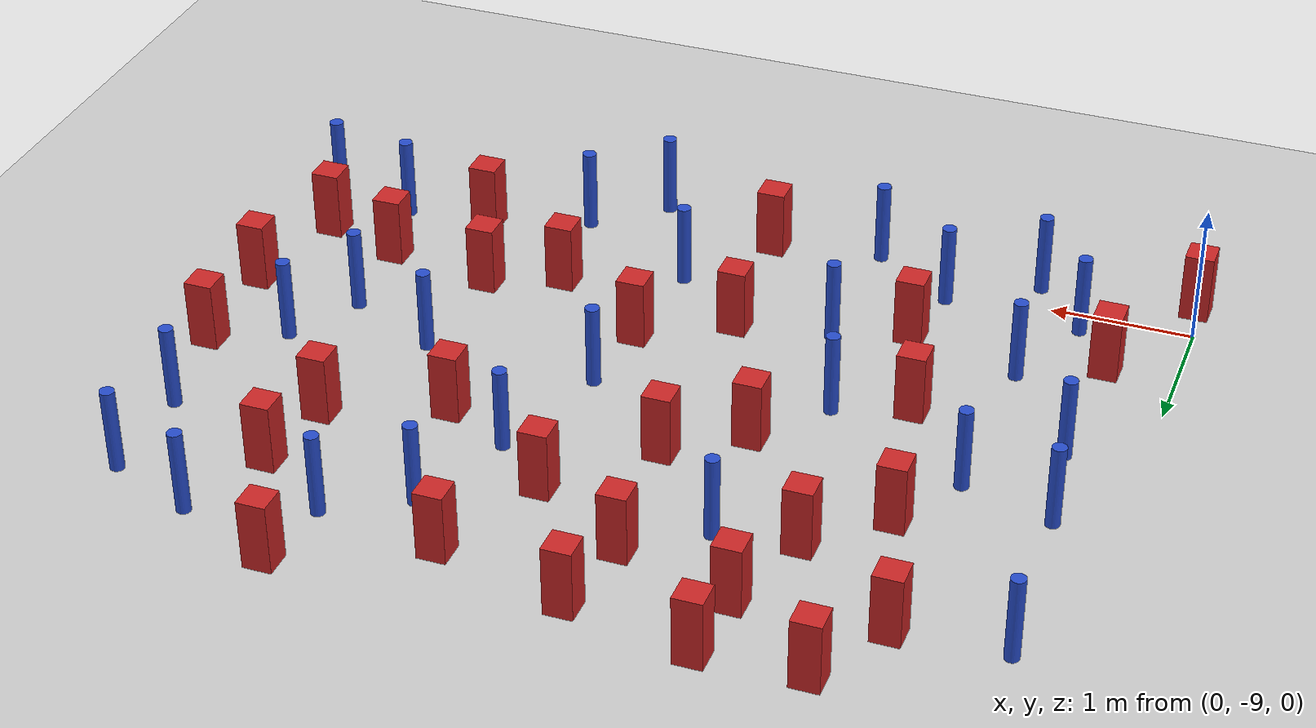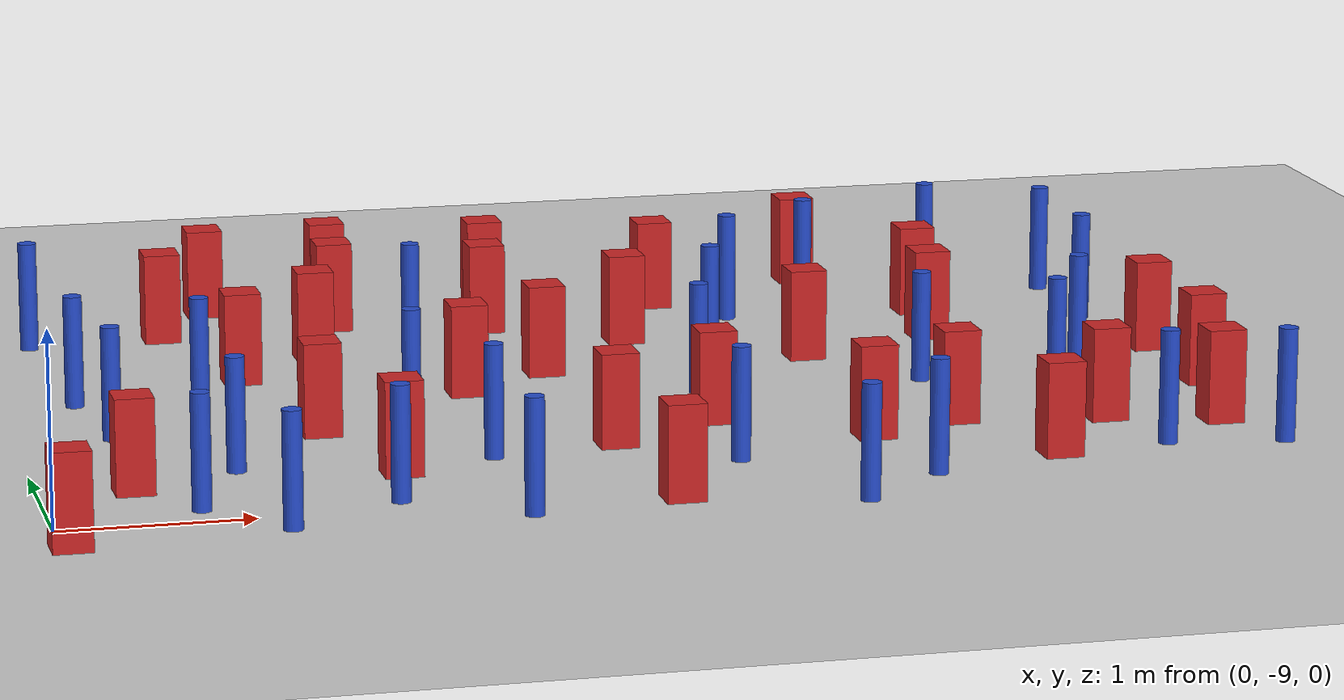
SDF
<sdf version="1.6">
 <world name="default">
  <model name="ground_plane">
   <static>1</static>
   <link name="link">
    <collision name="collision">
     <geometry><plane><normal>0 0 1</normal><size>100 100</size></plane></geometry>
     <surface><friction><ode><mu>100</mu><mu2>50</mu2></ode></friction></surface>
    </collision>
    <visual name="visual">
     <cast_shadows>0</cast_shadows>
     <geometry><plane><normal>0 0 1</normal><size>100 100</size></plane></geometry>
     <material>
      <ambient>1.0 1.0 1.0 1.0</ambient>
      <diffuse>0.8 0.8 0.8 1.0</diffuse>
      <specular>0.01 0.01 0.01 1.000000</specular>
     </material>
    </visual>
   </link>
  </model>
  <model name="square_post_obstacle11">
   <static>true</static>
   <pose>5.33757525692 -5.51145749906 8.22691968438e-08 7.22125133819e-06 -7.54495500217e-07 2.29674213826e-05</pose>
   <link name="link">
    <pose>0 0 0.25 0 -0 0</pose>
    <inertial>
     <mass>100</mass>
     <inertia>
      <ixx>0.166667</ixx>
      <ixy>0</ixy>
      <ixz>0</ixz>
      <iyy>0.166667</iyy>
      <iyz>0</iyz>
      <izz>0.166667</izz>
     </inertia>
    </inertial>
    <collision name="collision"><geometry><box><size>.2 .2 .5</size></box></geometry></collision>
    <visual name="visual">
     <geometry><box><size>.2 .2 .5</size></box></geometry>
     <material>
      <script><name>Gazebo/Red</name><uri>file://media/materials/scripts/gazebo.material</uri></script>
     </material>
    </visual>
   </link>
  </model>
  <model name="square_post_obstacle16">
   <static>true</static>
   <pose>1.57222593976 -7.46905780437 8.22691968438e-08 7.2212513382e-06 -7.54495500217e-07 2.29674213826e-05</pose>
   <link name="link">
    <pose>0 0 0.25 0 -0 0</pose>
    <inertial>
     <mass>100</mass>
     <inertia>
      <ixx>0.166667</ixx>
      <ixy>0</ixy>
      <ixz>0</ixz>
      <iyy>0.166667</iyy>
      <iyz>0</iyz>
      <izz>0.166667</izz>
     </inertia>
    </inertial>
    <collision name="collision"><geometry><box><size>.2 .2 .5</size></box></geometry></collision>
    <visual name="visual">
     <geometry><box><size>.2 .2 .5</size></box></geometry>
     <material>
      <script><name>Gazebo/Red</name><uri>file://media/materials/scripts/gazebo.material</uri></script>
     </material>
    </visual>
   </link>
  </model>
  <model name="square_post_obstacle21">
   <static>true</static>
   <pose>3.09033594513 -9.11885219332 8.22691968438e-08 7.22125133819e-06 -7.54495500217e-07 2.29674213826e-05</pose>
   <link name="link">
    <pose>0 0 0.25 0 -0 0</pose>
    <inertial>
     <mass>100</mass>
     <inertia>
      <ixx>0.166667</ixx>
      <ixy>0</ixy>
      <ixz>0</ixz>
      <iyy>0.166667</iyy>
      <iyz>0</iyz>
      <izz>0.166667</izz>
     </inertia>
    </inertial>
    <collision name="collision"><geometry><box><size>.2 .2 .5</size></box></geometry></collision>
    <visual name="visual">
     <geometry><box><size>.2 .2 .5</size></box></geometry>
     <material>
      <script><name>Gazebo/Red</name><uri>file://media/materials/scripts/gazebo.material</uri></script>
     </material>
    </visual>
   </link>
  </model>
  <model name="square_post_obstacle23">
   <static>true</static>
   <pose>3.91660827994 -5.03072451695 8.22691968438e-08 7.2212513382e-06 -7.54495500217e-07 2.29674213826e-05</pose>
   <link name="link">
    <pose>0 0 0.25 0 -0 0</pose>
    <inertial>
     <mass>100</mass>
     <inertia>
      <ixx>0.166667</ixx>
      <ixy>0</ixy>
      <ixz>0</ixz>
      <iyy>0.166667</iyy>
      <iyz>0</iyz>
      <izz>0.166667</izz>
     </inertia>
    </inertial>
    <collision name="collision"><geometry><box><size>.2 .2 .5</size></box></geometry></collision>
    <visual name="visual">
     <geometry><box><size>.2 .2 .5</size></box></geometry>
     <material>
      <script><name>Gazebo/Red</name><uri>file://media/materials/scripts/gazebo.material</uri></script>
     </material>
    </visual>
   </link>
  </model>
  <model name="pole_obstacle20">
   <static>true</static>
   <pose>1.04942983472 -6.79560014912 2.88873142074e-08 -9.90536689905e-09 4.60219948988e-07 -1.20965994961e-07</pose>
   <link name="link">
    <pose>0 0 0.3 0 -0 0</pose>
    <inertial>
     <mass>1</mass>
     <inertia><ixx>0.145833</ixx><ixy>0</ixy><ixz>0</ixz><iyy>0.145833</iyy><iyz>0</iyz><izz>0.125</izz></inertia>
    </inertial>
    <collision name="collision">
     <geometry><cylinder><radius>0.05</radius><length>.6</length></cylinder></geometry>
    </collision>
    <visual name="visual">
     <geometry><cylinder><radius>0.05</radius><length>.6</length></cylinder></geometry>
     <material>
      <script><name>Gazebo/Blue</name><uri>file://media/materials/scripts/gazebo.material</uri></script>
     </material>
    </visual>
   </link>
  </model>
  <model name="pole_obstacle31">
   <static>true</static>
   <pose>3.97341685442 -6.19304630537 2.88873142074e-08 -9.90536690327e-09 4.60219948978e-07 -1.20965994969e-07</pose>
   <link name="link">
    <pose>0 0 0.3 0 -0 0</pose>
    <inertial>
     <mass>1</mass>
     <inertia><ixx>0.145833</ixx><ixy>0</ixy><ixz>0</ixz><iyy>0.145833</iyy><iyz>0</iyz><izz>0.125</izz></inertia>
    </inertial>
    <collision name="collision">
     <geometry><cylinder><radius>0.05</radius><length>.6</length></cylinder></geometry>
    </collision>
    <visual name="visual">
     <geometry><cylinder><radius>0.05</radius><length>.6</length></cylinder></geometry>
     <material>
      <script><name>Gazebo/Blue</name><uri>file://media/materials/scripts/gazebo.material</uri></script>
     </material>
    </visual>
   </link>
  </model>
  <model name="pole_obstacle32">
   <static>true</static>
   <pose>6.21804202806 -5.89140701214 2.88873142074e-08 -9.90536690842e-09 4.60219948965e-07 -1.20965994976e-07</pose>
   <link name="link">
    <pose>0 0 0.3 0 -0 0</pose>
    <inertial>
     <mass>1</mass>
     <inertia><ixx>0.145833</ixx><ixy>0</ixy><ixz>0</ixz><iyy>0.145833</iyy><iyz>0</iyz><izz>0.125</izz></inertia>
    </inertial>
    <collision name="collision">
     <geometry><cylinder><radius>0.05</radius><length>.6</length></cylinder></geometry>
    </collision>
    <visual name="visual">
     <geometry><cylinder><radius>0.05</radius><length>.6</length></cylinder></geometry>
     <material>
      <script><name>Gazebo/Blue</name><uri>file://media/materials/scripts/gazebo.material</uri></script>
     </material>
    </visual>
   </link>
  </model>
  <model name="pole_obstacle42">
   <static>true</static>
   <pose>5.58293722837 -7.39669239524 2.88873142074e-08 -9.90536690842e-09 4.60219948965e-07 -1.20965994976e-07</pose>
   <link name="link">
    <pose>0 0 0.3 0 -0 0</pose>
    <inertial>
     <mass>1</mass>
     <inertia><ixx>0.145833</ixx><ixy>0</ixy><ixz>0</ixz><iyy>0.145833</iyy><iyz>0</iyz><izz>0.125</izz></inertia>
    </inertial>
    <collision name="collision">
     <geometry><cylinder><radius>0.05</radius><length>.6</length></cylinder></geometry>
    </collision>
    <visual name="visual">
     <geometry><cylinder><radius>0.05</radius><length>.6</length></cylinder></geometry>
     <material>
      <script><name>Gazebo/Blue</name><uri>file://media/materials/scripts/gazebo.material</uri></script>
     </material>
    </visual>
   </link>
  </model>
  <model name="pole_obstacle44">
   <static>true</static>
   <pose>3.9818655795 -9.3656703837 2.88873142074e-08 -9.90536692324e-09 4.6021994893e-07 -1.20965994987e-07</pose>
   <link name="link">
    <pose>0 0 0.3 0 -0 0</pose>
    <inertial>
     <mass>1</mass>
     <inertia><ixx>0.145833</ixx><ixy>0</ixy><ixz>0</ixz><iyy>0.145833</iyy><iyz>0</iyz><izz>0.125</izz></inertia>
    </inertial>
    <collision name="collision">
     <geometry><cylinder><radius>0.05</radius><length>.6</length></cylinder></geometry>
    </collision>
    <visual name="visual">
     <geometry><cylinder><radius>0.05</radius><length>.6</length></cylinder></geometry>
     <material>
      <script><name>Gazebo/Blue</name><uri>file://media/materials/scripts/gazebo.material</uri></script>
     </material>
    </visual>
   </link>
  </model>
  <model name="square_post_obstacle44">
   <static>true</static>
   <pose>2.0408039706 -5.16753493595 8.22691968438e-08 7.22125133819e-06 -7.54495500217e-07 2.29674213826e-05</pose>
   <link name="link">
    <pose>0 0 0.25 0 -0 0</pose>
    <inertial>
     <mass>100</mass>
     <inertia>
      <ixx>0.166667</ixx>
      <ixy>0</ixy>
      <ixz>0</ixz>
      <iyy>0.166667</iyy>
      <iyz>0</iyz>
      <izz>0.166667</izz>
     </inertia>
    </inertial>
    <collision name="collision"><geometry><box><size>.2 .2 .5</size></box></geometry></collision>
    <visual name="visual">
     <geometry><box><size>.2 .2 .5</size></box></geometry>
     <material>
      <script><name>Gazebo/Red</name><uri>file://media/materials/scripts/gazebo.material</uri></script>
     </material>
    </visual>
   </link>
  </model>
  <model name="pole_obstacle51">
   <static>true</static>
   <pose>0.325371970899 -5.27426410133 2.88873142074e-08 -9.90536689683e-09 4.60219948993e-07 -1.20965994957e-07</pose>
   <link name="link">
    <pose>0 0 0.3 0 -0 0</pose>
    <inertial>
     <mass>1</mass>
     <inertia><ixx>0.145833</ixx><ixy>0</ixy><ixz>0</ixz><iyy>0.145833</iyy><iyz>0</iyz><izz>0.125</izz></inertia>
    </inertial>
    <collision name="collision">
     <geometry><cylinder><radius>0.05</radius><length>.6</length></cylinder></geometry>
    </collision>
    <visual name="visual">
     <geometry><cylinder><radius>0.05</radius><length>.6</length></cylinder></geometry>
     <material>
      <script><name>Gazebo/Blue</name><uri>file://media/materials/scripts/gazebo.material</uri></script>
     </material>
    </visual>
   </link>
  </model>
  <model name="square_post_obstacle55">
   <static>true</static>
   <pose>2.9736760606 -6.46596064073 8.22691968438e-08 7.2212513382e-06 -7.54495500217e-07 2.29674213826e-05</pose>
   <link name="link">
    <pose>0 0 0.25 0 -0 0</pose>
    <inertial>
     <mass>100</mass>
     <inertia>
      <ixx>0.166667</ixx>
      <ixy>0</ixy>
      <ixz>0</ixz>
      <iyy>0.166667</iyy>
      <iyz>0</iyz>
      <izz>0.166667</izz>
     </inertia>
    </inertial>
    <collision name="collision"><geometry><box><size>.2 .2 .5</size></box></geometry></collision>
    <visual name="visual">
     <geometry><box><size>.2 .2 .5</size></box></geometry>
     <material>
      <script><name>Gazebo/Red</name><uri>file://media/materials/scripts/gazebo.material</uri></script>
     </material>
    </visual>
   </link>
  </model>
  <model name="pole_obstacle54">
   <static>true</static>
   <pose>4.78935690146 -5.14286120551 2.88873142074e-08 -9.90536690842e-09 4.60219948965e-07 -1.20965994976e-07</pose>
   <link name="link">
    <pose>0 0 0.3 0 -0 0</pose>
    <inertial>
     <mass>1</mass>
     <inertia><ixx>0.145833</ixx><ixy>0</ixy><ixz>0</ixz><iyy>0.145833</iyy><iyz>0</iyz><izz>0.125</izz></inertia>
    </inertial>
    <collision name="collision">
     <geometry><cylinder><radius>0.05</radius><length>.6</length></cylinder></geometry>
    </collision>
    <visual name="visual">
     <geometry><cylinder><radius>0.05</radius><length>.6</length></cylinder></geometry>
     <material>
      <script><name>Gazebo/Blue</name><uri>file://media/materials/scripts/gazebo.material</uri></script>
     </material>
    </visual>
   </link>
  </model>
  <model name="square_post_obstacle58">
   <static>true</static>
   <pose>5.24408193149 -6.12014181599 8.22691968438e-08 7.2212513382e-06 -7.54495500217e-07 2.29674213826e-05</pose>
   <link name="link">
    <pose>0 0 0.25 0 -0 0</pose>
    <inertial>
     <mass>100</mass>
     <inertia>
      <ixx>0.166667</ixx>
      <ixy>0</ixy>
      <ixz>0</ixz>
      <iyy>0.166667</iyy>
      <iyz>0</iyz>
      <izz>0.166667</izz>
     </inertia>
    </inertial>
    <collision name="collision"><geometry><box><size>.2 .2 .5</size></box></geometry></collision>
    <visual name="visual">
     <geometry><box><size>.2 .2 .5</size></box></geometry>
     <material>
      <script><name>Gazebo/Red</name><uri>file://media/materials/scripts/gazebo.material</uri></script>
     </material>
    </visual>
   </link>
  </model>
  <model name="square_post_obstacle59">
   <static>true</static>
   <pose>1.064555535 -5.22423128339 8.22691968438e-08 7.22125133819e-06 -7.54495500217e-07 2.29674213826e-05</pose>
   <link name="link">
    <pose>0 0 0.25 0 -0 0</pose>
    <inertial>
     <mass>100</mass>
     <inertia>
      <ixx>0.166667</ixx>
      <ixy>0</ixy>
      <ixz>0</ixz>
      <iyy>0.166667</iyy>
      <iyz>0</iyz>
      <izz>0.166667</izz>
     </inertia>
    </inertial>
    <collision name="collision"><geometry><box><size>.2 .2 .5</size></box></geometry></collision>
    <visual name="visual">
     <geometry><box><size>.2 .2 .5</size></box></geometry>
     <material>
      <script><name>Gazebo/Red</name><uri>file://media/materials/scripts/gazebo.material</uri></script>
     </material>
    </visual>
   </link>
  </model>
  <model name="square_post_obstacle61">
   <static>true</static>
   <pose>2.97713820025 -4.79499850761 8.22691968438e-08 7.2212513382e-06 -7.54495500217e-07 2.29674213826e-05</pose>
   <link name="link">
    <pose>0 0 0.25 0 -0 0</pose>
    <inertial>
     <mass>100</mass>
     <inertia>
      <ixx>0.166667</ixx>
      <ixy>0</ixy>
      <ixz>0</ixz>
      <iyy>0.166667</iyy>
      <iyz>0</iyz>
      <izz>0.166667</izz>
     </inertia>
    </inertial>
    <collision name="collision"><geometry><box><size>.2 .2 .5</size></box></geometry></collision>
    <visual name="visual">
     <geometry><box><size>.2 .2 .5</size></box></geometry>
     <material>
      <script><name>Gazebo/Red</name><uri>file://media/materials/scripts/gazebo.material</uri></script>
     </material>
    </visual>
   </link>
  </model>
  <model name="pole_obstacle68">
   <static>true</static>
   <pose>4.45349878449 -8.96404991662 2.88873142074e-08 -9.9053668967e-09 4.60219948993e-07 -1.20965994957e-07</pose>
   <link name="link">
    <pose>0 0 0.3 0 -0 0</pose>
    <inertial>
     <mass>1</mass>
     <inertia><ixx>0.145833</ixx><ixy>0</ixy><ixz>0</ixz><iyy>0.145833</iyy><iyz>0</iyz><izz>0.125</izz></inertia>
    </inertial>
    <collision name="collision">
     <geometry><cylinder><radius>0.05</radius><length>.6</length></cylinder></geometry>
    </collision>
    <visual name="visual">
     <geometry><cylinder><radius>0.05</radius><length>.6</length></cylinder></geometry>
     <material>
      <script><name>Gazebo/Blue</name><uri>file://media/materials/scripts/gazebo.material</uri></script>
     </material>
    </visual>
   </link>
  </model>
  <model name="square_post_obstacle73">
   <static>true</static>
   <pose>4.85124030336 -7.96117170717 8.22691968438e-08 7.2212513382e-06 -7.54495500217e-07 2.29674213826e-05</pose>
   <link name="link">
    <pose>0 0 0.25 0 -0 0</pose>
    <inertial>
     <mass>100</mass>
     <inertia>
      <ixx>0.166667</ixx>
      <ixy>0</ixy>
      <ixz>0</ixz>
      <iyy>0.166667</iyy>
      <iyz>0</iyz>
      <izz>0.166667</izz>
     </inertia>
    </inertial>
    <collision name="collision"><geometry><box><size>.2 .2 .5</size></box></geometry></collision>
    <visual name="visual">
     <geometry><box><size>.2 .2 .5</size></box></geometry>
     <material>
      <script><name>Gazebo/Red</name><uri>file://media/materials/scripts/gazebo.material</uri></script>
     </material>
    </visual>
   </link>
  </model>
  <model name="pole_obstacle83">
   <static>true</static>
   <pose>1.13166540684 -9.23340567181 2.88873142074e-08 -9.90536690474e-09 4.60219948974e-07 -1.2096599497e-07</pose>
   <link name="link">
    <pose>0 0 0.3 0 -0 0</pose>
    <inertial>
     <mass>1</mass>
     <inertia><ixx>0.145833</ixx><ixy>0</ixy><ixz>0</ixz><iyy>0.145833</iyy><iyz>0</iyz><izz>0.125</izz></inertia>
    </inertial>
    <collision name="collision">
     <geometry><cylinder><radius>0.05</radius><length>.6</length></cylinder></geometry>
    </collision>
    <visual name="visual">
     <geometry><cylinder><radius>0.05</radius><length>.6</length></cylinder></geometry>
     <material>
      <script><name>Gazebo/Blue</name><uri>file://media/materials/scripts/gazebo.material</uri></script>
     </material>
    </visual>
   </link>
  </model>
  <model name="pole_obstacle84">
   <static>true</static>
   <pose>0.407851909466 -6.60980919452 2.88873142074e-08 -9.90536689683e-09 4.60219948993e-07 -1.20965994957e-07</pose>
   <link name="link">
    <pose>0 0 0.3 0 -0 0</pose>
    <inertial>
     <mass>1</mass>
     <inertia><ixx>0.145833</ixx><ixy>0</ixy><ixz>0</ixz><iyy>0.145833</iyy><iyz>0</iyz><izz>0.125</izz></inertia>
    </inertial>
    <collision name="collision">
     <geometry><cylinder><radius>0.05</radius><length>.6</length></cylinder></geometry>
    </collision>
    <visual name="visual">
     <geometry><cylinder><radius>0.05</radius><length>.6</length></cylinder></geometry>
     <material>
      <script><name>Gazebo/Blue</name><uri>file://media/materials/scripts/gazebo.material</uri></script>
     </material>
    </visual>
   </link>
  </model>
  <model name="pole_obstacle89">
   <static>true</static>
   <pose>0.509338950484 -7.34000948153 2.88873142074e-08 -9.90536689714e-09 4.60219948992e-07 -1.20965994957e-07</pose>
   <link name="link">
    <pose>0 0 0.3 0 -0 0</pose>
    <inertial>
     <mass>1</mass>
     <inertia><ixx>0.145833</ixx><ixy>0</ixy><ixz>0</ixz><iyy>0.145833</iyy><iyz>0</iyz><izz>0.125</izz></inertia>
    </inertial>
    <collision name="collision">
     <geometry><cylinder><radius>0.05</radius><length>.6</length></cylinder></geometry>
    </collision>
    <visual name="visual">
     <geometry><cylinder><radius>0.05</radius><length>.6</length></cylinder></geometry>
     <material>
      <script><name>Gazebo/Blue</name><uri>file://media/materials/scripts/gazebo.material</uri></script>
     </material>
    </visual>
   </link>
  </model>
  <model name="pole_obstacle91">
   <static>true</static>
   <pose>2.31743484436 -9.24978730901 2.88873142074e-08 -9.90536692318e-09 4.6021994893e-07 -1.20965994988e-07</pose>
   <link name="link">
    <pose>0 0 0.3 0 -0 0</pose>
    <inertial>
     <mass>1</mass>
     <inertia><ixx>0.145833</ixx><ixy>0</ixy><ixz>0</ixz><iyy>0.145833</iyy><iyz>0</iyz><izz>0.125</izz></inertia>
    </inertial>
    <collision name="collision">
     <geometry><cylinder><radius>0.05</radius><length>.6</length></cylinder></geometry>
    </collision>
    <visual name="visual">
     <geometry><cylinder><radius>0.05</radius><length>.6</length></cylinder></geometry>
     <material>
      <script><name>Gazebo/Blue</name><uri>file://media/materials/scripts/gazebo.material</uri></script>
     </material>
    </visual>
   </link>
  </model>
  <model name="pole_obstacle95">
   <static>true</static>
   <pose>2.08506083482 -7.3057959439 2.88873142074e-08 -9.90536689859e-09 4.60219948989e-07 -1.20965994961e-07</pose>
   <link name="link">
    <pose>0 0 0.3 0 -0 0</pose>
    <inertial>
     <mass>1</mass>
     <inertia><ixx>0.145833</ixx><ixy>0</ixy><ixz>0</ixz><iyy>0.145833</iyy><iyz>0</iyz><izz>0.125</izz></inertia>
    </inertial>
    <collision name="collision">
     <geometry><cylinder><radius>0.05</radius><length>.6</length></cylinder></geometry>
    </collision>
    <visual name="visual">
     <geometry><cylinder><radius>0.05</radius><length>.6</length></cylinder></geometry>
     <material>
      <script><name>Gazebo/Blue</name><uri>file://media/materials/scripts/gazebo.material</uri></script>
     </material>
    </visual>
   </link>
  </model>
  <model name="square_post_obstacle85">
   <static>true</static>
   <pose>5.62562028586 -8.0859653805 8.22691968438e-08 7.2212513382e-06 -7.54495500217e-07 2.29674213826e-05</pose>
   <link name="link">
    <pose>0 0 0.25 0 -0 0</pose>
    <inertial>
     <mass>100</mass>
     <inertia>
      <ixx>0.166667</ixx>
      <ixy>0</ixy>
      <ixz>0</ixz>
      <iyy>0.166667</iyy>
      <iyz>0</iyz>
      <izz>0.166667</izz>
     </inertia>
    </inertial>
    <collision name="collision"><geometry><box><size>.2 .2 .5</size></box></geometry></collision>
    <visual name="visual">
     <geometry><box><size>.2 .2 .5</size></box></geometry>
     <material>
      <script><name>Gazebo/Red</name><uri>file://media/materials/scripts/gazebo.material</uri></script>
     </material>
    </visual>
   </link>
  </model>
  <model name="square_post_obstacle88">
   <static>true</static>
   <pose>4.34315890374 -8.17166685743 8.22691968438e-08 7.2212513382e-06 -7.54495500217e-07 2.29674213826e-05</pose>
   <link name="link">
    <pose>0 0 0.25 0 -0 0</pose>
    <inertial>
     <mass>100</mass>
     <inertia>
      <ixx>0.166667</ixx>
      <ixy>0</ixy>
      <ixz>0</ixz>
      <iyy>0.166667</iyy>
      <iyz>0</iyz>
      <izz>0.166667</izz>
     </inertia>
    </inertial>
    <collision name="collision"><geometry><box><size>.2 .2 .5</size></box></geometry></collision>
    <visual name="visual">
     <geometry><box><size>.2 .2 .5</size></box></geometry>
     <material>
      <script><name>Gazebo/Red</name><uri>file://media/materials/scripts/gazebo.material</uri></script>
     </material>
    </visual>
   </link>
  </model>
  <model name="square_post_obstacle92">
   <static>true</static>
   <pose>2.47692432592 -6.81030162409 8.22691968438e-08 7.2212513382e-06 -7.54495500217e-07 2.29674213826e-05</pose>
   <link name="link">
    <pose>0 0 0.25 0 -0 0</pose>
    <inertial>
     <mass>100</mass>
     <inertia>
      <ixx>0.166667</ixx>
      <ixy>0</ixy>
      <ixz>0</ixz>
      <iyy>0.166667</iyy>
      <iyz>0</iyz>
      <izz>0.166667</izz>
     </inertia>
    </inertial>
    <collision name="collision"><geometry><box><size>.2 .2 .5</size></box></geometry></collision>
    <visual name="visual">
     <geometry><box><size>.2 .2 .5</size></box></geometry>
     <material>
      <script><name>Gazebo/Red</name><uri>file://media/materials/scripts/gazebo.material</uri></script>
     </material>
    </visual>
   </link>
  </model>
  <model name="square_post_obstacle99">
   <static>true</static>
   <pose>3.56463304007 -5.83875298212 8.22691968438e-08 7.2212513382e-06 -7.54495500217e-07 2.29674213826e-05</pose>
   <link name="link">
    <pose>0 0 0.25 0 -0 0</pose>
    <inertial>
     <mass>100</mass>
     <inertia>
      <ixx>0.166667</ixx>
      <ixy>0</ixy>
      <ixz>0</ixz>
      <iyy>0.166667</iyy>
      <iyz>0</iyz>
      <izz>0.166667</izz>
     </inertia>
    </inertial>
    <collision name="collision"><geometry><box><size>.2 .2 .5</size></box></geometry></collision>
    <visual name="visual">
     <geometry><box><size>.2 .2 .5</size></box></geometry>
     <material>
      <script><name>Gazebo/Red</name><uri>file://media/materials/scripts/gazebo.material</uri></script>
     </material>
    </visual>
   </link>
  </model>
  <model name="square_post_obstacle103">
   <static>true</static>
   <pose>5.1652685964 -8.73347444146 8.22691968438e-08 7.2212513382e-06 -7.54495500217e-07 2.29674213826e-05</pose>
   <link name="link">
    <pose>0 0 0.25 0 -0 0</pose>
    <inertial>
     <mass>100</mass>
     <inertia>
      <ixx>0.166667</ixx>
      <ixy>0</ixy>
      <ixz>0</ixz>
      <iyy>0.166667</iyy>
      <iyz>0</iyz>
      <izz>0.166667</izz>
     </inertia>
    </inertial>
    <collision name="collision"><geometry><box><size>.2 .2 .5</size></box></geometry></collision>
    <visual name="visual">
     <geometry><box><size>.2 .2 .5</size></box></geometry>
     <material>
      <script><name>Gazebo/Red</name><uri>file://media/materials/scripts/gazebo.material</uri></script>
     </material>
    </visual>
   </link>
  </model>
  <model name="pole_obstacle123">
   <static>true</static>
   <pose>6.21796690953 -5.12921019331 2.88873142074e-08 -9.90536690842e-09 4.60219948965e-07 -1.20965994976e-07</pose>
   <link name="link">
    <pose>0 0 0.3 0 -0 0</pose>
    <inertial>
     <mass>1</mass>
     <inertia><ixx>0.145833</ixx><ixy>0</ixy><ixz>0</ixz><iyy>0.145833</iyy><iyz>0</iyz><izz>0.125</izz></inertia>
    </inertial>
    <collision name="collision">
     <geometry><cylinder><radius>0.05</radius><length>.6</length></cylinder></geometry>
    </collision>
    <visual name="visual">
     <geometry><cylinder><radius>0.05</radius><length>.6</length></cylinder></geometry>
     <material>
      <script><name>Gazebo/Blue</name><uri>file://media/materials/scripts/gazebo.material</uri></script>
     </material>
    </visual>
   </link>
  </model>
  <model name="pole_obstacle127">
   <static>true</static>
   <pose>0.754400465314 -8.79667972933 2.88873142074e-08 -9.90536690779e-09 4.60219948967e-07 -1.20965994975e-07</pose>
   <link name="link">
    <pose>0 0 0.3 0 -0 0</pose>
    <inertial>
     <mass>1</mass>
     <inertia><ixx>0.145833</ixx><ixy>0</ixy><ixz>0</ixz><iyy>0.145833</iyy><iyz>0</iyz><izz>0.125</izz></inertia>
    </inertial>
    <collision name="collision">
     <geometry><cylinder><radius>0.05</radius><length>.6</length></cylinder></geometry>
    </collision>
    <visual name="visual">
     <geometry><cylinder><radius>0.05</radius><length>.6</length></cylinder></geometry>
     <material>
      <script><name>Gazebo/Blue</name><uri>file://media/materials/scripts/gazebo.material</uri></script>
     </material>
    </visual>
   </link>
  </model>
  <model name="square_post_obstacle118">
   <static>true</static>
   <pose>3.6155153363 -7.68125557921 8.22691968438e-08 7.22125133819e-06 -7.54495500217e-07 2.29674213826e-05</pose>
   <link name="link">
    <pose>0 0 0.25 0 -0 0</pose>
    <inertial>
     <mass>100</mass>
     <inertia>
      <ixx>0.166667</ixx>
      <ixy>0</ixy>
      <ixz>0</ixz>
      <iyy>0.166667</iyy>
      <iyz>0</iyz>
      <izz>0.166667</izz>
     </inertia>
    </inertial>
    <collision name="collision"><geometry><box><size>.2 .2 .5</size></box></geometry></collision>
    <visual name="visual">
     <geometry><box><size>.2 .2 .5</size></box></geometry>
     <material>
      <script><name>Gazebo/Red</name><uri>file://media/materials/scripts/gazebo.material</uri></script>
     </material>
    </visual>
   </link>
  </model>
  <model name="pole_obstacle137">
   <static>true</static>
   <pose>6.37456419526 -8.75662570911 2.88873142074e-08 -9.9053668967e-09 4.60219948993e-07 -1.20965994957e-07</pose>
   <link name="link">
    <pose>0 0 0.3 0 -0 0</pose>
    <inertial>
     <mass>1</mass>
     <inertia><ixx>0.145833</ixx><ixy>0</ixy><ixz>0</ixz><iyy>0.145833</iyy><iyz>0</iyz><izz>0.125</izz></inertia>
    </inertial>
    <collision name="collision">
     <geometry><cylinder><radius>0.05</radius><length>.6</length></cylinder></geometry>
    </collision>
    <visual name="visual">
     <geometry><cylinder><radius>0.05</radius><length>.6</length></cylinder></geometry>
     <material>
      <script><name>Gazebo/Blue</name><uri>file://media/materials/scripts/gazebo.material</uri></script>
     </material>
    </visual>
   </link>
  </model>
  <model name="square_post_obstacle125">
   <static>true</static>
   <pose>2.09289687175 -4.63251425904 8.22691968438e-08 7.22125133819e-06 -7.54495500217e-07 2.29674213826e-05</pose>
   <link name="link">
    <pose>0 0 0.25 0 -0 0</pose>
    <inertial>
     <mass>100</mass>
     <inertia>
      <ixx>0.166667</ixx>
      <ixy>0</ixy>
      <ixz>0</ixz>
      <iyy>0.166667</iyy>
      <iyz>0</iyz>
      <izz>0.166667</izz>
     </inertia>
    </inertial>
    <collision name="collision"><geometry><box><size>.2 .2 .5</size></box></geometry></collision>
    <visual name="visual">
     <geometry><box><size>.2 .2 .5</size></box></geometry>
     <material>
      <script><name>Gazebo/Red</name><uri>file://media/materials/scripts/gazebo.material</uri></script>
     </material>
    </visual>
   </link>
  </model>
  <model name="square_post_obstacle126">
   <static>true</static>
   <pose>1.83266971803 -8.33722861344 8.22691968438e-08 7.2212513382e-06 -7.54495500217e-07 2.29674213826e-05</pose>
   <link name="link">
    <pose>0 0 0.25 0 -0 0</pose>
    <inertial>
     <mass>100</mass>
     <inertia>
      <ixx>0.166667</ixx>
      <ixy>0</ixy>
      <ixz>0</ixz>
      <iyy>0.166667</iyy>
      <iyz>0</iyz>
      <izz>0.166667</izz>
     </inertia>
    </inertial>
    <collision name="collision"><geometry><box><size>.2 .2 .5</size></box></geometry></collision>
    <visual name="visual">
     <geometry><box><size>.2 .2 .5</size></box></geometry>
     <material>
      <script><name>Gazebo/Red</name><uri>file://media/materials/scripts/gazebo.material</uri></script>
     </material>
    </visual>
   </link>
  </model>
  <model name="pole_obstacle143">
   <static>true</static>
   <pose>2.37594558593 -5.76754823289 2.88873142074e-08 -9.90536689859e-09 4.60219948989e-07 -1.20965994961e-07</pose>
   <link name="link">
    <pose>0 0 0.3 0 -0 0</pose>
    <inertial>
     <mass>1</mass>
     <inertia><ixx>0.145833</ixx><ixy>0</ixy><ixz>0</ixz><iyy>0.145833</iyy><iyz>0</iyz><izz>0.125</izz></inertia>
    </inertial>
    <collision name="collision">
     <geometry><cylinder><radius>0.05</radius><length>.6</length></cylinder></geometry>
    </collision>
    <visual name="visual">
     <geometry><cylinder><radius>0.05</radius><length>.6</length></cylinder></geometry>
     <material>
      <script><name>Gazebo/Blue</name><uri>file://media/materials/scripts/gazebo.material</uri></script>
     </material>
    </visual>
   </link>
  </model>
  <model name="square_post_obstacle137">
   <static>true</static>
   <pose>1.81791078304 -5.84080680885 8.22691968438e-08 7.2212513382e-06 -7.54495500217e-07 2.29674213826e-05</pose>
   <link name="link">
    <pose>0 0 0.25 0 -0 0</pose>
    <inertial>
     <mass>100</mass>
     <inertia>
      <ixx>0.166667</ixx>
      <ixy>0</ixy>
      <ixz>0</ixz>
      <iyy>0.166667</iyy>
      <iyz>0</iyz>
      <izz>0.166667</izz>
     </inertia>
    </inertial>
    <collision name="collision"><geometry><box><size>.2 .2 .5</size></box></geometry></collision>
    <visual name="visual">
     <geometry><box><size>.2 .2 .5</size></box></geometry>
     <material>
      <script><name>Gazebo/Red</name><uri>file://media/materials/scripts/gazebo.material</uri></script>
     </material>
    </visual>
   </link>
  </model>
  <model name="square_post_obstacle138">
   <static>true</static>
   <pose>3.01115171815 -8.0337839742 8.22691968438e-08 7.22125133819e-06 -7.54495500217e-07 2.29674213826e-05</pose>
   <link name="link">
    <pose>0 0 0.25 0 -0 0</pose>
    <inertial>
     <mass>100</mass>
     <inertia>
      <ixx>0.166667</ixx>
      <ixy>0</ixy>
      <ixz>0</ixz>
      <iyy>0.166667</iyy>
      <iyz>0</iyz>
      <izz>0.166667</izz>
     </inertia>
    </inertial>
    <collision name="collision"><geometry><box><size>.2 .2 .5</size></box></geometry></collision>
    <visual name="visual">
     <geometry><box><size>.2 .2 .5</size></box></geometry>
     <material>
      <script><name>Gazebo/Red</name><uri>file://media/materials/scripts/gazebo.material</uri></script>
     </material>
    </visual>
   </link>
  </model>
  <model name="square_post_obstacle139">
   <static>true</static>
   <pose>0.0480037809508 -9.31620919774 8.22691968438e-08 7.22125133819e-06 -7.54495500217e-07 2.29674213826e-05</pose>
   <link name="link">
    <pose>0 0 0.25 0 -0 0</pose>
    <inertial>
     <mass>100</mass>
     <inertia>
      <ixx>0.166667</ixx>
      <ixy>0</ixy>
      <ixz>0</ixz>
      <iyy>0.166667</iyy>
      <iyz>0</iyz>
      <izz>0.166667</izz>
     </inertia>
    </inertial>
    <collision name="collision"><geometry><box><size>.2 .2 .5</size></box></geometry></collision>
    <visual name="visual">
     <geometry><box><size>.2 .2 .5</size></box></geometry>
     <material>
      <script><name>Gazebo/Red</name><uri>file://media/materials/scripts/gazebo.material</uri></script>
     </material>
    </visual>
   </link>
  </model>
  <model name="square_post_obstacle144">
   <static>true</static>
   <pose>1.34865503198 -6.27243667386 8.22691968438e-08 7.2212513382e-06 -7.54495500217e-07 2.29674213826e-05</pose>
   <link name="link">
    <pose>0 0 0.25 0 -0 0</pose>
    <inertial>
     <mass>100</mass>
     <inertia>
      <ixx>0.166667</ixx>
      <ixy>0</ixy>
      <ixz>0</ixz>
      <iyy>0.166667</iyy>
      <iyz>0</iyz>
      <izz>0.166667</izz>
     </inertia>
    </inertial>
    <collision name="collision"><geometry><box><size>.2 .2 .5</size></box></geometry></collision>
    <visual name="visual">
     <geometry><box><size>.2 .2 .5</size></box></geometry>
     <material>
      <script><name>Gazebo/Red</name><uri>file://media/materials/scripts/gazebo.material</uri></script>
     </material>
    </visual>
   </link>
  </model>
  <model name="pole_obstacle159">
   <static>true</static>
   <pose>3.6855266416 -7.07778634885 2.88873142074e-08 -9.90536689859e-09 4.60219948989e-07 -1.20965994961e-07</pose>
   <link name="link">
    <pose>0 0 0.3 0 -0 0</pose>
    <inertial>
     <mass>1</mass>
     <inertia><ixx>0.145833</ixx><ixy>0</ixy><ixz>0</ixz><iyy>0.145833</iyy><iyz>0</iyz><izz>0.125</izz></inertia>
    </inertial>
    <collision name="collision">
     <geometry><cylinder><radius>0.05</radius><length>.6</length></cylinder></geometry>
    </collision>
    <visual name="visual">
     <geometry><cylinder><radius>0.05</radius><length>.6</length></cylinder></geometry>
     <material>
      <script><name>Gazebo/Blue</name><uri>file://media/materials/scripts/gazebo.material</uri></script>
     </material>
    </visual>
   </link>
  </model>
  <model name="pole_obstacle160">
   <static>true</static>
   <pose>1.73135517997 -8.86005676383 2.88873142074e-08 -9.90536690474e-09 4.60219948974e-07 -1.2096599497e-07</pose>
   <link name="link">
    <pose>0 0 0.3 0 -0 0</pose>
    <inertial>
     <mass>1</mass>
     <inertia><ixx>0.145833</ixx><ixy>0</ixy><ixz>0</ixz><iyy>0.145833</iyy><iyz>0</iyz><izz>0.125</izz></inertia>
    </inertial>
    <collision name="collision">
     <geometry><cylinder><radius>0.05</radius><length>.6</length></cylinder></geometry>
    </collision>
    <visual name="visual">
     <geometry><cylinder><radius>0.05</radius><length>.6</length></cylinder></geometry>
     <material>
      <script><name>Gazebo/Blue</name><uri>file://media/materials/scripts/gazebo.material</uri></script>
     </material>
    </visual>
   </link>
  </model>
  <model name="pole_obstacle167">
   <static>true</static>
   <pose>5.59777162715 -4.87543650065 2.88873142074e-08 -9.90536690842e-09 4.60219948965e-07 -1.20965994976e-07</pose>
   <link name="link">
    <pose>0 0 0.3 0 -0 0</pose>
    <inertial>
     <mass>1</mass>
     <inertia><ixx>0.145833</ixx><ixy>0</ixy><ixz>0</ixz><iyy>0.145833</iyy><iyz>0</iyz><izz>0.125</izz></inertia>
    </inertial>
    <collision name="collision">
     <geometry><cylinder><radius>0.05</radius><length>.6</length></cylinder></geometry>
    </collision>
    <visual name="visual">
     <geometry><cylinder><radius>0.05</radius><length>.6</length></cylinder></geometry>
     <material>
      <script><name>Gazebo/Blue</name><uri>file://media/materials/scripts/gazebo.material</uri></script>
     </material>
    </visual>
   </link>
  </model>
  <model name="pole_obstacle169">
   <static>true</static>
   <pose>1.03211231238 -8.11494710876 2.88873142074e-08 -9.90536690572e-09 4.60219948972e-07 -1.20965994971e-07</pose>
   <link name="link">
    <pose>0 0 0.3 0 -0 0</pose>
    <inertial>
     <mass>1</mass>
     <inertia><ixx>0.145833</ixx><ixy>0</ixy><ixz>0</ixz><iyy>0.145833</iyy><iyz>0</iyz><izz>0.125</izz></inertia>
    </inertial>
    <collision name="collision">
     <geometry><cylinder><radius>0.05</radius><length>.6</length></cylinder></geometry>
    </collision>
    <visual name="visual">
     <geometry><cylinder><radius>0.05</radius><length>.6</length></cylinder></geometry>
     <material>
      <script><name>Gazebo/Blue</name><uri>file://media/materials/scripts/gazebo.material</uri></script>
     </material>
    </visual>
   </link>
  </model>
  <model name="square_post_obstacle163">
   <static>true</static>
   <pose>4.44595993138 -6.42826531598 8.22691968438e-08 7.22125133819e-06 -7.54495500217e-07 2.29674213826e-05</pose>
   <link name="link">
    <pose>0 0 0.25 0 -0 0</pose>
    <inertial>
     <mass>100</mass>
     <inertia>
      <ixx>0.166667</ixx>
      <ixy>0</ixy>
      <ixz>0</ixz>
      <iyy>0.166667</iyy>
      <iyz>0</iyz>
      <izz>0.166667</izz>
     </inertia>
    </inertial>
    <collision name="collision"><geometry><box><size>.2 .2 .5</size></box></geometry></collision>
    <visual name="visual">
     <geometry><box><size>.2 .2 .5</size></box></geometry>
     <material>
      <script><name>Gazebo/Red</name><uri>file://media/materials/scripts/gazebo.material</uri></script>
     </material>
    </visual>
   </link>
  </model>
  <model name="pole_obstacle173">
   <static>true</static>
   <pose>4.91863028291 -7.08701580956 2.88873142074e-08 -9.90536690842e-09 4.60219948965e-07 -1.20965994976e-07</pose>
   <link name="link">
    <pose>0 0 0.3 0 -0 0</pose>
    <inertial>
     <mass>1</mass>
     <inertia><ixx>0.145833</ixx><ixy>0</ixy><ixz>0</ixz><iyy>0.145833</iyy><iyz>0</iyz><izz>0.125</izz></inertia>
    </inertial>
    <collision name="collision">
     <geometry><cylinder><radius>0.05</radius><length>.6</length></cylinder></geometry>
    </collision>
    <visual name="visual">
     <geometry><cylinder><radius>0.05</radius><length>.6</length></cylinder></geometry>
     <material>
      <script><name>Gazebo/Blue</name><uri>file://media/materials/scripts/gazebo.material</uri></script>
     </material>
    </visual>
   </link>
  </model>
  <model name="pole_obstacle174">
   <static>true</static>
   <pose>4.25981575088 -5.45069212626 2.88873142074e-08 -9.90536690842e-09 4.60219948965e-07 -1.20965994976e-07</pose>
   <link name="link">
    <pose>0 0 0.3 0 -0 0</pose>
    <inertial>
     <mass>1</mass>
     <inertia><ixx>0.145833</ixx><ixy>0</ixy><ixz>0</ixz><iyy>0.145833</iyy><iyz>0</iyz><izz>0.125</izz></inertia>
    </inertial>
    <collision name="collision">
     <geometry><cylinder><radius>0.05</radius><length>.6</length></cylinder></geometry>
    </collision>
    <visual name="visual">
     <geometry><cylinder><radius>0.05</radius><length>.6</length></cylinder></geometry>
     <material>
      <script><name>Gazebo/Blue</name><uri>file://media/materials/scripts/gazebo.material</uri></script>
     </material>
    </visual>
   </link>
  </model>
  <model name="pole_obstacle180">
   <static>true</static>
   <pose>5.77214555486 -8.65923835136 2.88873142074e-08 -9.9053668967e-09 4.60219948993e-07 -1.20965994957e-07</pose>
   <link name="link">
    <pose>0 0 0.3 0 -0 0</pose>
    <inertial>
     <mass>1</mass>
     <inertia><ixx>0.145833</ixx><ixy>0</ixy><ixz>0</ixz><iyy>0.145833</iyy><iyz>0</iyz><izz>0.125</izz></inertia>
    </inertial>
    <collision name="collision">
     <geometry><cylinder><radius>0.05</radius><length>.6</length></cylinder></geometry>
    </collision>
    <visual name="visual">
     <geometry><cylinder><radius>0.05</radius><length>.6</length></cylinder></geometry>
     <material>
      <script><name>Gazebo/Blue</name><uri>file://media/materials/scripts/gazebo.material</uri></script>
     </material>
    </visual>
   </link>
  </model>
  <model name="square_post_obstacle173">
   <static>true</static>
   <pose>6.38099352272 -7.45646788233 8.22691968438e-08 7.2212513382e-06 -7.54495500217e-07 2.29674213826e-05</pose>
   <link name="link">
    <pose>0 0 0.25 0 -0 0</pose>
    <inertial>
     <mass>100</mass>
     <inertia>
      <ixx>0.166667</ixx>
      <ixy>0</ixy>
      <ixz>0</ixz>
      <iyy>0.166667</iyy>
      <iyz>0</iyz>
      <izz>0.166667</izz>
     </inertia>
    </inertial>
    <collision name="collision"><geometry><box><size>.2 .2 .5</size></box></geometry></collision>
    <visual name="visual">
     <geometry><box><size>.2 .2 .5</size></box></geometry>
     <material>
      <script><name>Gazebo/Red</name><uri>file://media/materials/scripts/gazebo.material</uri></script>
     </material>
    </visual>
   </link>
  </model>
  <model name="square_post_obstacle175">
   <static>true</static>
   <pose>0.476806667049 -8.37655892368 8.22691968438e-08 7.22125133819e-06 -7.54495500217e-07 2.29674213826e-05</pose>
   <link name="link">
    <pose>0 0 0.25 0 -0 0</pose>
    <inertial>
     <mass>100</mass>
     <inertia>
      <ixx>0.166667</ixx>
      <ixy>0</ixy>
      <ixz>0</ixz>
      <iyy>0.166667</iyy>
      <iyz>0</iyz>
      <izz>0.166667</izz>
     </inertia>
    </inertial>
    <collision name="collision"><geometry><box><size>.2 .2 .5</size></box></geometry></collision>
    <visual name="visual">
     <geometry><box><size>.2 .2 .5</size></box></geometry>
     <material>
      <script><name>Gazebo/Red</name><uri>file://media/materials/scripts/gazebo.material</uri></script>
     </material>
    </visual>
   </link>
  </model>
  <model name="square_post_obstacle192">
   <static>true</static>
   <pose>6.19726444729 -8.26839482218 8.22691968438e-08 7.22125133819e-06 -7.54495500217e-07 2.29674213826e-05</pose>
   <link name="link">
    <pose>0 0 0.25 0 -0 0</pose>
    <inertial>
     <mass>100</mass>
     <inertia>
      <ixx>0.166667</ixx>
      <ixy>0</ixy>
      <ixz>0</ixz>
      <iyy>0.166667</iyy>
      <iyz>0</iyz>
      <izz>0.166667</izz>
     </inertia>
    </inertial>
    <collision name="collision"><geometry><box><size>.2 .2 .5</size></box></geometry></collision>
    <visual name="visual">
     <geometry><box><size>.2 .2 .5</size></box></geometry>
     <material>
      <script><name>Gazebo/Red</name><uri>file://media/materials/scripts/gazebo.material</uri></script>
     </material>
    </visual>
   </link>
  </model>
  <model name="square_post_obstacle193">
   <static>true</static>
   <pose>1.38558073649 -4.66923603526 8.22691968438e-08 7.2212513382e-06 -7.54495500217e-07 2.29674213826e-05</pose>
   <link name="link">
    <pose>0 0 0.25 0 -0 0</pose>
    <inertial>
     <mass>100</mass>
     <inertia>
      <ixx>0.166667</ixx>
      <ixy>0</ixy>
      <ixz>0</ixz>
      <iyy>0.166667</iyy>
      <iyz>0</iyz>
      <izz>0.166667</izz>
     </inertia>
    </inertial>
    <collision name="collision"><geometry><box><size>.2 .2 .5</size></box></geometry></collision>
    <visual name="visual">
     <geometry><box><size>.2 .2 .5</size></box></geometry>
     <material>
      <script><name>Gazebo/Red</name><uri>file://media/materials/scripts/gazebo.material</uri></script>
     </material>
    </visual>
   </link>
  </model>
  <model name="square_post_obstacle196">
   <static>true</static>
   <pose>6.35596273605 -6.65249959931 8.22691968438e-08 7.22125133819e-06 -7.54495500217e-07 2.29674213826e-05</pose>
   <link name="link">
    <pose>0 0 0.25 0 -0 0</pose>
    <inertial>
     <mass>100</mass>
     <inertia>
      <ixx>0.166667</ixx>
      <ixy>0</ixy>
      <ixz>0</ixz>
      <iyy>0.166667</iyy>
      <iyz>0</iyz>
      <izz>0.166667</izz>
     </inertia>
    </inertial>
    <collision name="collision"><geometry><box><size>.2 .2 .5</size></box></geometry></collision>
    <visual name="visual">
     <geometry><box><size>.2 .2 .5</size></box></geometry>
     <material>
      <script><name>Gazebo/Red</name><uri>file://media/materials/scripts/gazebo.material</uri></script>
     </material>
    </visual>
   </link>
  </model>
  <model name="pole_obstacle204">
   <static>true</static>
   <pose>2.34549988144 -8.153079874 2.88873142074e-08 -9.90536692318e-09 4.6021994893e-07 -1.20965994988e-07</pose>
   <link name="link">
    <pose>0 0 0.3 0 -0 0</pose>
    <inertial>
     <mass>1</mass>
     <inertia><ixx>0.145833</ixx><ixy>0</ixy><ixz>0</ixz><iyy>0.145833</iyy><iyz>0</iyz><izz>0.125</izz></inertia>
    </inertial>
    <collision name="collision">
     <geometry><cylinder><radius>0.05</radius><length>.6</length></cylinder></geometry>
    </collision>
    <visual name="visual">
     <geometry><cylinder><radius>0.05</radius><length>.6</length></cylinder></geometry>
     <material>
      <script><name>Gazebo/Blue</name><uri>file://media/materials/scripts/gazebo.material</uri></script>
     </material>
    </visual>
   </link>
  </model>
  <model name="pole_obstacle218">
   <static>true</static>
   <pose>5.8710067487 -6.88657634192 2.88873142074e-08 -9.90536690842e-09 4.60219948965e-07 -1.20965994976e-07</pose>
   <link name="link">
    <pose>0 0 0.3 0 -0 0</pose>
    <inertial>
     <mass>1</mass>
     <inertia><ixx>0.145833</ixx><ixy>0</ixy><ixz>0</ixz><iyy>0.145833</iyy><iyz>0</iyz><izz>0.125</izz></inertia>
    </inertial>
    <collision name="collision">
     <geometry><cylinder><radius>0.05</radius><length>.6</length></cylinder></geometry>
    </collision>
    <visual name="visual">
     <geometry><cylinder><radius>0.05</radius><length>.6</length></cylinder></geometry>
     <material>
      <script><name>Gazebo/Blue</name><uri>file://media/materials/scripts/gazebo.material</uri></script>
     </material>
    </visual>
   </link>
  </model>
  <model name="pole_obstacle228">
   <static>true</static>
   <pose>3.55205206955 -8.48860892483 2.88873142074e-08 -9.90536692318e-09 4.6021994893e-07 -1.20965994988e-07</pose>
   <link name="link">
    <pose>0 0 0.3 0 -0 0</pose>
    <inertial>
     <mass>1</mass>
     <inertia><ixx>0.145833</ixx><ixy>0</ixy><ixz>0</ixz><iyy>0.145833</iyy><iyz>0</iyz><izz>0.125</izz></inertia>
    </inertial>
    <collision name="collision">
     <geometry><cylinder><radius>0.05</radius><length>.6</length></cylinder></geometry>
    </collision>
    <visual name="visual">
     <geometry><cylinder><radius>0.05</radius><length>.6</length></cylinder></geometry>
     <material>
      <script><name>Gazebo/Blue</name><uri>file://media/materials/scripts/gazebo.material</uri></script>
     </material>
    </visual>
   </link>
  </model>
  <model name="square_post_obstacle211">
   <static>true</static>
   <pose>4.88059003262 -4.58036003534 8.22691968438e-08 7.22125133819e-06 -7.54495500217e-07 2.29674213826e-05</pose>
   <link name="link">
    <pose>0 0 0.25 0 -0 0</pose>
    <inertial>
     <mass>100</mass>
     <inertia>
      <ixx>0.166667</ixx>
      <ixy>0</ixy>
      <ixz>0</ixz>
      <iyy>0.166667</iyy>
      <iyz>0</iyz>
      <izz>0.166667</izz>
     </inertia>
    </inertial>
    <collision name="collision"><geometry><box><size>.2 .2 .5</size></box></geometry></collision>
    <visual name="visual">
     <geometry><box><size>.2 .2 .5</size></box></geometry>
     <material>
      <script><name>Gazebo/Red</name><uri>file://media/materials/scripts/gazebo.material</uri></script>
     </material>
    </visual>
   </link>
  </model>
  <model name="square_post_obstacle214">
   <static>true</static>
   <pose>2.86447003262 -5.40402003534 8.22691968438e-08 7.22125133819e-06 -7.54495500217e-07 2.29674213826e-05</pose>
   <link name="link">
    <pose>0 0 0.25 0 -0 0</pose>
    <inertial>
     <mass>100</mass>
     <inertia>
      <ixx>0.166667</ixx>
      <ixy>0</ixy>
      <ixz>0</ixz>
      <iyy>0.166667</iyy>
      <iyz>0</iyz>
      <izz>0.166667</izz>
     </inertia>
    </inertial>
    <collision name="collision"><geometry><box><size>.2 .2 .5</size></box></geometry></collision>
    <visual name="visual">
     <geometry><box><size>.2 .2 .5</size></box></geometry>
     <material>
      <script><name>Gazebo/Red</name><uri>file://media/materials/scripts/gazebo.material</uri></script>
     </material>
    </visual>
   </link>
  </model>
 </world>
</sdf>
